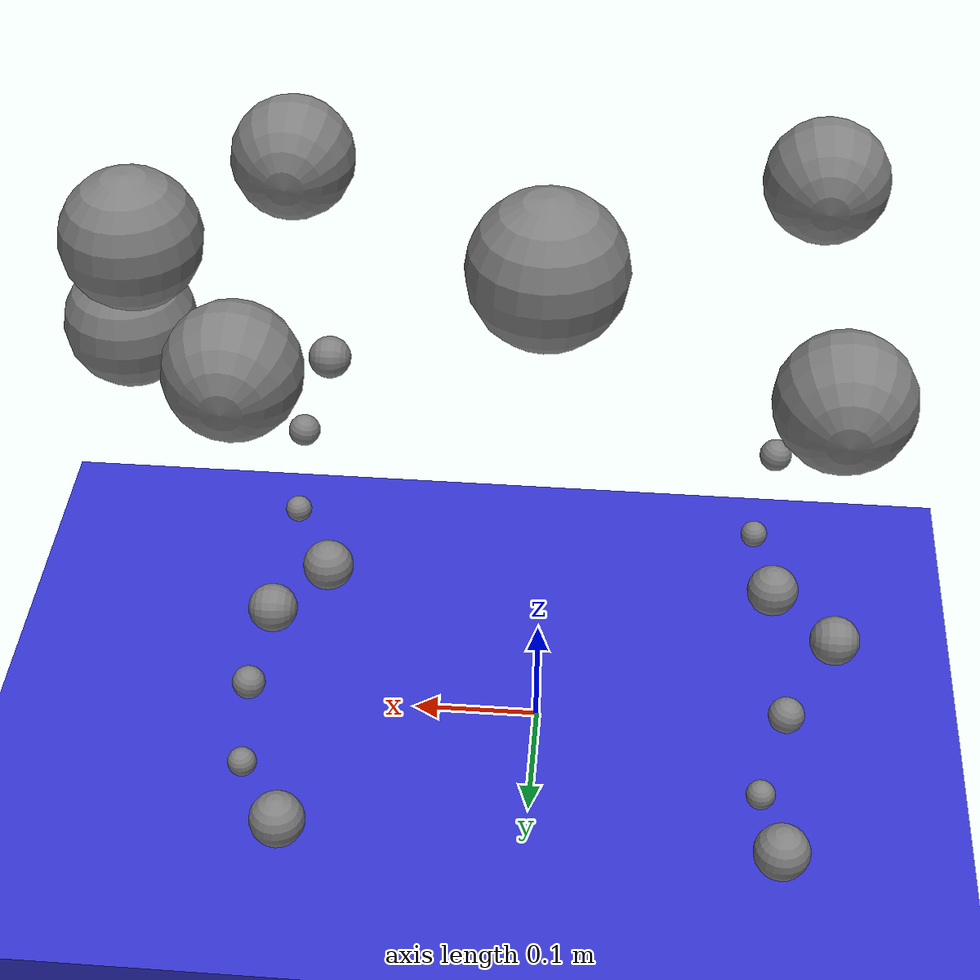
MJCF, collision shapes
<mujoco model="go2 scene smooth">
  <include file="go2_smooth.xml"/>

  <statistic center="0 0 0.1" extent="0.8"/>

  <visual>
    <headlight diffuse="0.6 0.6 0.6" ambient="0.3 0.3 0.3" specular="0 0 0"/>
    <rgba haze="0.15 0.25 0.35 1"/>
    <global azimuth="-130" elevation="-20"/>
  </visual>

  <asset>
    <texture type="skybox" builtin="gradient" rgb1="0.3 0.5 0.7" rgb2="0 0 0" width="512" height="3072"/>
    <texture type="2d" name="groundplane" builtin="checker" mark="edge" rgb1="0.2 0.3 0.4" rgb2="0.1 0.2 0.3"
      markrgb="0.8 0.8 0.8" width="300" height="300"/>
    <material name="groundplane" texture="groundplane" texuniform="true" texrepeat="5 5" reflectance="0.2"/>
  </asset>

  <worldbody>
    <light pos="0 0 1.5" dir="0 0 -1" directional="true"/>
    <geom name="floor" size="0 0 0.05" type="plane" material="groundplane"  />
      <body name="corridor1" pos="0 0 -0.195">
            <geom name="slippery_surface" size="10.0 3.0 0.2" type="box" friction="0.03 0.05 0.07" rgba="0.2 0.2 0.8 0.3"/>
      </body>
  <!-- pos="0.3 0 -0.19" -->
  </worldbody>

  <contact >

        <pair  geom1="FR" geom2="slippery_surface" condim="4" friction="0.03 0.05 0.07" />
        <pair  geom1="FL" geom2="slippery_surface" condim="4" friction="0.03 0.05 0.07" />
        <pair  geom1="RR" geom2="slippery_surface" condim="4" friction="0.03 0.05 0.07" />
        <pair  geom1="RL" geom2="slippery_surface" condim="4" friction="0.03 0.05 0.07" />

    </contact>

</mujoco>

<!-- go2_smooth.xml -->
<mujoco model="go2">
  <compiler angle="radian" meshdir="assets" autolimits="true"/>

  <option cone="pyramidal" impratio="100" iterations="1" ls_iterations="5">
    <flag eulerdamp="disable"/>
  </option>

  <default>
    <default class="go2">
      <geom friction="0.6" margin="0.001" condim="1"/>
      <joint axis="0 1 0" damping="2" armature="0.01"/>
      <general forcerange="-24 24" biastype="affine" gainprm="50 0 0" biasprm="0 -50 -0.5"/>

      <default class="abduction">
        <joint axis="1 0 0" range="-1.0472 1.0472"/>
        <general ctrlrange="-0.9472 0.9472"/>
      </default>
      <default class="hip">
        <joint range="-1.5708 3.4907"/>
        <general ctrlrange="-1.4 2.5"/>
      </default>
      <default class="knee">
        <joint range="-2.7227 -0.83776"/>
        <general ctrlrange="-2.6227 -0.84776"/>
      </default>
      <default class="visual">
        <geom type="mesh" contype="0" conaffinity="0" group="2"/>
      </default>
      <default class="go2foot">
        <site group="1" pos="-0.002 0 -0.213"/>
        <geom rgba="0.231373 0.380392 0.705882 1"/>
      </default>
      <default class="collision">
        <geom group="3"/>
        <default class="foot">
          <geom size="0.022" pos="-0.002 0 -0.213" priority="1" solimp="0.015 1 0.031" condim="6"/>
        </default>
      </default>
    </default>
  </default>

  <asset>
    <material name="metal" rgba=".9 .95 .95 1"/>
    <material name="black" rgba="0 0 0 1"/>
    <material name="white" rgba="1 1 1 1"/>
    <material name="gray" rgba="0.671705 0.692426 0.774270 1"/>

    <mesh file="base_0.obj"/>
    <mesh file="base_1.obj"/>
    <mesh file="base_2.obj"/>
    <mesh file="base_3.obj"/>
    <mesh file="base_4.obj"/>
    <mesh file="hip_0.obj"/>
    <mesh file="hip_1.obj"/>
    <mesh file="thigh_0.obj"/>
    <mesh file="thigh_1.obj"/>
    <mesh file="thigh_mirror_0.obj"/>
    <mesh file="thigh_mirror_1.obj"/>
    <mesh file="calf_0.obj"/>
    <mesh file="calf_1.obj"/>
    <mesh file="calf_mirror_0.obj"/>
    <mesh file="calf_mirror_1.obj"/>
    <mesh file="foot.obj"/>
  </asset>

  <worldbody>
    <body name="base" pos="0 0 0.445" childclass="go2">
      <camera name="track" pos="0.846 -1.465 0.916" xyaxes="0.866 0.500 0.000 -0.171 0.296 0.940" mode="trackcom"/>
      <inertial pos="0.021112 0 -0.005366" quat="-0.000543471 0.713435 -0.00173769 0.700719" mass="6.921"
        diaginertia="0.107027 0.0980771 0.0244531"/>
      <freejoint/>
      <geom mesh="base_0" material="black" class="visual"/>
      <geom mesh="base_1" material="black" class="visual"/>
      <geom mesh="base_2" material="black" class="visual"/>
      <geom mesh="base_3" material="white" class="visual"/>
      <geom mesh="base_4" material="gray" class="visual"/>
      <geom size="0.057 0.04675 0.057"  class="collision"/>
      <geom size="0.05 0.045" pos="0.285 0 0.01"  class="collision"/>
      <geom size="0.047" pos="0.293 0 -0.06" class="collision"/>
      <site name="imu" pos="-0.02557 0 0.04232"/>
      <body name="FL_hip" pos="0.1934 0.0465 0">
        <inertial pos="-0.0054 0.00194 -0.000105" quat="0.497014 0.499245 0.505462 0.498237" mass="0.678"
          diaginertia="0.00088403 0.000596003 0.000479967"/>
        <joint name="FL_hip_joint" class="abduction"/>
        <geom mesh="hip_0" material="metal" class="visual"/>
        <geom mesh="hip_1" material="gray" class="visual"/>
        <geom size="0.046 0.02" pos="0 0.08 0" quat="1 1 0 0"  class="collision"/>
        <body name="FL_thigh" pos="0 0.0955 0">
          <inertial pos="-0.00374 -0.0223 -0.0327" quat="0.829533 0.0847635 -0.0200632 0.551623" mass="1.152"
            diaginertia="0.00594973 0.00584149 0.000878787"/>
          <joint name="FL_thigh_joint" class="hip"/>
          <geom mesh="thigh_0" material="metal" class="visual"/>
          <geom mesh="thigh_1" material="gray" class="visual"/>
          <geom size="0.017 0.01225 0.017" pos="-0.015 0 -0.1955" quat="0.707107 0 0.707107 0"  class="collision"/>
          <body name="FL_calf" pos="0 0 -0.213">
            <inertial pos="0.00629595 -0.000622121 -0.141417" quat="0.710672 0.00154099 -0.00450087 0.703508"
              mass="0.241352" diaginertia="0.0014901 0.00146356 5.31397e-05"/>
            <joint name="FL_calf_joint" class="knee"/>
            <geom mesh="calf_0" material="gray" class="visual"/>
            <geom mesh="calf_1" material="black" class="visual"/>
            <geom size="0.012 0.06" pos="0.008 0 -0.06" quat="0.994493 0 -0.104807 0"  class="collision"/>
            <geom size="0.011 0.0325" pos="0.02 0 -0.148" quat="0.999688 0 0.0249974 0"  class="collision"/>
            <geom pos="0 0 -0.213" mesh="foot" class="visual" material="black"/>
            <geom name="FL" class="foot"/>
            <site name="FL_foot" class="go2foot"/>
          </body>
        </body>
      </body>
      <body name="FR_hip" pos="0.1934 -0.0465 0">
        <inertial pos="-0.0054 -0.00194 -0.000105" quat="0.498237 0.505462 0.499245 0.497014" mass="0.678"
          diaginertia="0.00088403 0.000596003 0.000479967"/>
        <joint name="FR_hip_joint" class="abduction"/>
        <geom mesh="hip_0" material="metal" class="visual" quat="4.63268e-05 1 0 0"/>
        <geom mesh="hip_1" material="gray" class="visual" quat="4.63268e-05 1 0 0"/>
        <geom size="0.046 0.02" pos="0 -0.08 0" quat="0.707107 0.707107 0 0"  class="collision"/>
        <body name="FR_thigh" pos="0 -0.0955 0">
          <inertial pos="-0.00374 0.0223 -0.0327" quat="0.551623 -0.0200632 0.0847635 0.829533" mass="1.152"
            diaginertia="0.00594973 0.00584149 0.000878787"/>
          <joint name="FR_thigh_joint" class="hip"/>
          <geom mesh="thigh_mirror_0" material="metal" class="visual"/>
          <geom mesh="thigh_mirror_1" material="gray" class="visual"/>
          <geom size="0.017 0.01225 0.017" pos="-0.015 0 -0.1955" quat="0.707107 0 0.707107 0"  class="collision"/>
          <body name="FR_calf" pos="0 0 -0.213">
            <inertial pos="0.00629595 0.000622121 -0.141417" quat="0.703508 -0.00450087 0.00154099 0.710672"
              mass="0.241352" diaginertia="0.0014901 0.00146356 5.31397e-05"/>
            <joint name="FR_calf_joint" class="knee"/>
            <geom mesh="calf_mirror_0" material="gray" class="visual"/>
            <geom mesh="calf_mirror_1" material="black" class="visual"/>
            <geom size="0.013 0.06" pos="0.01 0 -0.06" quat="0.995004 0 -0.0998334 0"  class="collision"/>
            <geom size="0.011 0.0325" pos="0.02 0 -0.148" quat="0.999688 0 0.0249974 0"  class="collision"/>
            <geom pos="0 0 -0.213" mesh="foot" class="visual" material="black"/>
            <geom name="FR" class="foot"/>
            <site name="FR_foot" class="go2foot"/>
          </body>
        </body>
      </body>
      <body name="RL_hip" pos="-0.1934 0.0465 0">
        <inertial pos="0.0054 0.00194 -0.000105" quat="0.505462 0.498237 0.497014 0.499245" mass="0.678"
          diaginertia="0.00088403 0.000596003 0.000479967"/>
        <joint name="RL_hip_joint" class="abduction"/>
        <geom mesh="hip_0" material="metal" class="visual" quat="4.63268e-05 0 1 0"/>
        <geom mesh="hip_1" material="gray" class="visual" quat="4.63268e-05 0 1 0"/>
        <geom size="0.046 0.02" pos="0 0.08 0" quat="0.707107 0.707107 0 0"  class="collision"/>
        <body name="RL_thigh" pos="0 0.0955 0">
          <inertial pos="-0.00374 -0.0223 -0.0327" quat="0.829533 0.0847635 -0.0200632 0.551623" mass="1.152"
            diaginertia="0.00594973 0.00584149 0.000878787"/>
          <joint name="RL_thigh_joint" class="hip"/>
          <geom mesh="thigh_0" material="metal" class="visual"/>
          <geom mesh="thigh_1" material="gray" class="visual"/>
          <geom size="0.017 0.01225 0.017" pos="-0.015 0 -0.1955" quat="0.707107 0 0.707107 0"  class="collision"/>
          <body name="RL_calf" pos="0 0 -0.213">
            <inertial pos="0.00629595 -0.000622121 -0.141417" quat="0.710672 0.00154099 -0.00450087 0.703508"
              mass="0.241352" diaginertia="0.0014901 0.00146356 5.31397e-05"/>
            <joint name="RL_calf_joint" class="knee"/>
            <geom mesh="calf_0" material="gray" class="visual"/>
            <geom mesh="calf_1" material="black" class="visual"/>
            <geom size="0.013 0.06" pos="0.01 0 -0.06" quat="0.995004 0 -0.0998334 0"  class="collision"/>
            <geom size="0.011 0.0325" pos="0.02 0 -0.148" quat="0.999688 0 0.0249974 0"  class="collision"/>
            <geom pos="0 0 -0.213" mesh="foot" class="visual" material="black"/>
            <geom name="RL" class="foot"/>
            <site name="RL_foot" class="go2foot"/>
          </body>
        </body>
      </body>
      <body name="RR_hip" pos="-0.1934 -0.0465 0">
        <inertial pos="0.0054 -0.00194 -0.000105" quat="0.499245 0.497014 0.498237 0.505462" mass="0.678"
          diaginertia="0.00088403 0.000596003 0.000479967"/>
        <joint name="RR_hip_joint" class="abduction"/>
        <geom mesh="hip_0" material="metal" class="visual" quat="2.14617e-09 4.63268e-05 4.63268e-05 -1"/>
        <geom mesh="hip_1" material="gray" class="visual" quat="2.14617e-09 4.63268e-05 4.63268e-05 -1"/>
        <geom size="0.046 0.02" pos="0 -0.08 0" quat="0.707107 0.707107 0 0"  class="collision"/>
        <body name="RR_thigh" pos="0 -0.0955 0">
          <inertial pos="-0.00374 0.0223 -0.0327" quat="0.551623 -0.0200632 0.0847635 0.829533" mass="1.152"
            diaginertia="0.00594973 0.00584149 0.000878787"/>
          <joint name="RR_thigh_joint" class="hip"/>
          <geom mesh="thigh_mirror_0" material="metal" class="visual"/>
          <geom mesh="thigh_mirror_1" material="gray" class="visual"/>
          <geom size="0.017 0.01225 0.017" pos="-0.015 0 -0.1955" quat="0.707107 0 0.707107 0"  class="collision"/>
          <body name="RR_calf" pos="0 0 -0.213">
            <inertial pos="0.00629595 0.000622121 -0.141417" quat="0.703508 -0.00450087 0.00154099 0.710672"
              mass="0.241352" diaginertia="0.0014901 0.00146356 5.31397e-05"/>
            <joint name="RR_calf_joint" class="knee"/>
            <geom mesh="calf_mirror_0" material="gray" class="visual"/>
            <geom mesh="calf_mirror_1" material="black" class="visual"/>
            <geom size="0.013 0.06" pos="0.01 0 -0.06" quat="0.995004 0 -0.0998334 0"  class="collision"/>
            <geom size="0.011 0.0325" pos="0.02 0 -0.148" quat="0.999688 0 0.0249974 0"  class="collision"/>
            <geom pos="0 0 -0.213" mesh="foot" class="visual" material="black"/>
            <geom name="RR" class="foot"/>
            <site name="RR_foot" class="go2foot"/>
          </body>
        </body>
      </body>
    </body>
  </worldbody>

  <actuator>
    <general class="abduction" name="FR_hip" joint="FR_hip_joint"/>
    <general class="hip" name="FR_thigh" joint="FR_thigh_joint"/>
    <general class="knee" name="FR_calf" joint="FR_calf_joint"/>
    <general class="abduction" name="FL_hip" joint="FL_hip_joint"/>
    <general class="hip" name="FL_thigh" joint="FL_thigh_joint"/>
    <general class="knee" name="FL_calf" joint="FL_calf_joint"/>
    <general class="abduction" name="RR_hip" joint="RR_hip_joint"/>
    <general class="hip" name="RR_thigh" joint="RR_thigh_joint"/>
    <general class="knee" name="RR_calf" joint="RR_calf_joint"/>
    <general class="abduction" name="RL_hip" joint="RL_hip_joint"/>
    <general class="hip" name="RL_thigh" joint="RL_thigh_joint"/>
    <general class="knee" name="RL_calf" joint="RL_calf_joint"/>
  </actuator>

  <sensor>
    <jointpos joint="FL_hip_joint" name="abduction_front_left_pos"/>
    <jointpos joint="FL_thigh_joint" name="hip_front_left_pos"/>
    <jointpos joint="FL_calf_joint" name="knee_front_left_pos"/>
    <jointpos joint="RL_hip_joint" name="abduction_hind_left_pos"/>
    <jointpos joint="RL_thigh_joint" name="hip_hind_left_pos"/>
    <jointpos joint="RL_calf_joint" name="knee_hind_left_pos"/>
    <jointpos joint="FR_hip_joint" name="abduction_front_right_pos"/>
    <jointpos joint="FR_thigh_joint" name="hip_front_right_pos"/>
    <jointpos joint="FR_calf_joint" name="knee_front_right_pos"/>
    <jointpos joint="RR_hip_joint" name="abduction_hind_right_pos"/>
    <jointpos joint="RR_thigh_joint" name="hip_hind_right_pos"/>
    <jointpos joint="RR_calf_joint" name="knee_hind_right_pos"/>
    <jointvel joint="FL_hip_joint" name="abduction_front_left_vel"/>
    <jointvel joint="FL_thigh_joint" name="hip_front_left_vel"/>
    <jointvel joint="FL_calf_joint" name="knee_front_left_vel"/>
    <jointvel joint="RL_hip_joint" name="abduction_hind_left_vel"/>
    <jointvel joint="RL_thigh_joint" name="hip_hind_left_vel"/>
    <jointvel joint="RL_calf_joint" name="knee_hind_left_vel"/>
    <jointvel joint="FR_hip_joint" name="abduction_front_right_vel"/>
    <jointvel joint="FR_thigh_joint" name="hip_front_right_vel"/>
    <jointvel joint="FR_calf_joint" name="knee_front_right_vel"/>
    <jointvel joint="RR_hip_joint" name="abduction_hind_right_vel"/>
    <jointvel joint="RR_thigh_joint" name="hip_hind_right_vel"/>
    <jointvel joint="RR_calf_joint" name="knee_hind_right_vel"/>
    <gyro site="imu" name="gyro"/>
    <accelerometer site="imu" name="accelerometer"/>
    <framequat objtype="site" objname="imu" name="orientation"/>
    <framepos objtype="site" objname="imu" name="global_position"/>
    <framelinvel objtype="site" objname="imu" name="global_linvel"/>
    <frameangvel objtype="site" objname="imu" name="global_angvel"/>
  </sensor>

  <keyframe>
    <key name="home" qpos="0 0 0.27 1 0 0 0 0 0.9 -1.8 0 0.9 -1.8 0 0.9 -1.8 0 0.9 -1.8"
      ctrl="0 0.9 -1.8 0 0.9 -1.8 0 0.9 -1.8 0 0.9 -1.8"/>
  </keyframe>
</mujoco>
